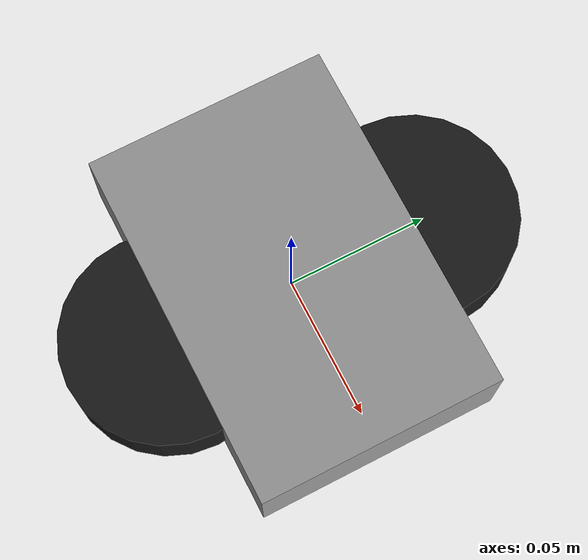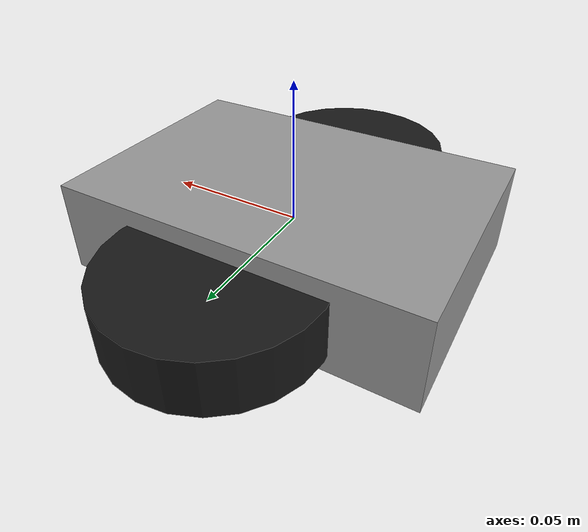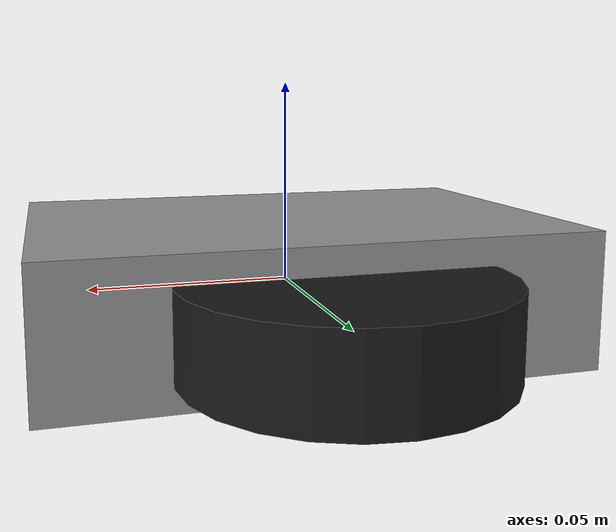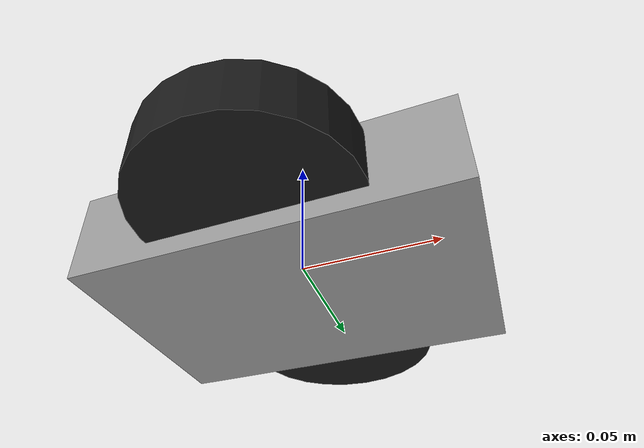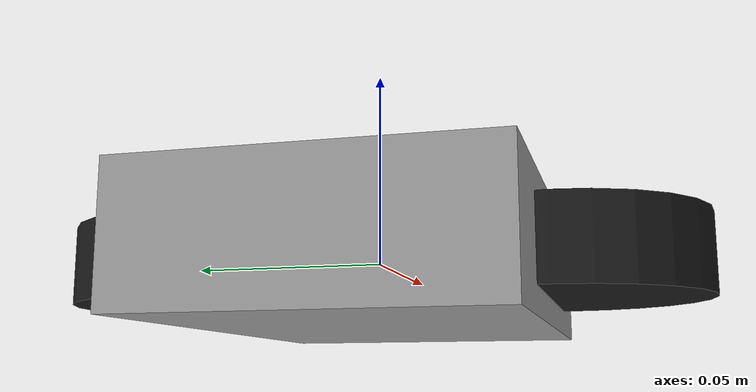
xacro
<?xml version="1.0"?>
<robot xmlns:xacro="http://ros.org/wiki/xacro" name="vero">

  <!-- Parameters -->
  <xacro:property name="wheel_radius" value="0.036"/>
  <xacro:property name="wheel_separation" value="0.0916"/>  <!-- 91.6mm -->
  <xacro:property name="base_length" value="0.1274"/>       <!-- 127.4mm -->
  <xacro:property name="base_width" value="0.0866"/>        <!-- 43.3*2 = 86.6mm -->
  <xacro:property name="base_height" value="0.033"/>        <!-- 33mm -->

  <!-- Base Link -->
  <link name="base_link">
    <visual>
      <geometry>
        <box size="${base_length} ${base_width} ${base_height}"/>
      </geometry>
      <material name="gray">
        <color rgba="0.6 0.6 0.6 1"/>
      </material>
    </visual>
    <collision>
      <geometry>
        <box size="${base_length} ${base_width} ${base_height}"/>
      </geometry>
    </collision>
    <inertial>
      <mass value="2.0"/>
      <origin xyz="0 0 0"/>
      <inertia ixx="0.01" ixy="0.0" ixz="0.0"
               iyy="0.01" iyz="0.0"
               izz="0.02"/>
    </inertial>
  </link>

  <!-- Left Wheel -->
  <link name="left_wheel">
    <visual>
      <geometry>
        <cylinder length="0.02" radius="${wheel_radius}"/>
      </geometry>
      <material name="black">
        <color rgba="0.1 0.1 0.1 1"/>
      </material>
    </visual>
    <collision>
      <geometry>
        <cylinder length="0.02" radius="${wheel_radius}"/>
      </geometry>
    </collision>
    <inertial>
      <mass value="0.2"/>
      <origin xyz="0 0 0"/>
      <inertia ixx="0.0001" ixy="0.0" ixz="0.0"
               iyy="0.0002" iyz="0.0"
               izz="0.0001"/>
    </inertial>
  </link>

  <!-- Right Wheel -->
  <link name="right_wheel">
    <visual>
      <geometry>
        <cylinder length="0.02" radius="${wheel_radius}"/>
      </geometry>
      <material name="black"/>
    </visual>
    <collision>
      <geometry>
        <cylinder length="0.02" radius="${wheel_radius}"/>
      </geometry>
    </collision>
    <inertial>
      <mass value="0.2"/>
      <origin xyz="0 0 0"/>
      <inertia ixx="0.0001" ixy="0.0" ixz="0.0"
               iyy="0.0002" iyz="0.0"
               izz="0.0001"/>
    </inertial>
  </link>

  <!-- Left Wheel Joint -->
  <joint name="left_wheel_joint" type="continuous">
    <parent link="base_link"/>
    <child link="left_wheel"/>
    <origin xyz="0 ${wheel_separation/2} 0" rpy="0 0 0"/>
    <axis xyz="0 1 0"/>
  </joint>

  <!-- Right Wheel Joint -->
  <joint name="right_wheel_joint" type="continuous">
    <parent link="base_link"/>
    <child link="right_wheel"/>
    <origin xyz="0 -${wheel_separation/2} 0" rpy="0 0 0"/>
    <axis xyz="0 1 0"/>
  </joint>

  <!-- ros2_control tag -->
  <ros2_control name="VeroSystem" type="system">
    <hardware>
      <plugin>vero_hardware/VeroHardwareInterface</plugin>
    </hardware>
    <joint name="left_wheel_joint">
      <command_interface name="velocity"/>
      <state_interface name="position"/>
      <state_interface name="velocity"/>
    </joint>
    <joint name="right_wheel_joint">
      <command_interface name="velocity"/>
      <state_interface name="position"/>
      <state_interface name="velocity"/>
    </joint>
  </ros2_control>

</robot>
